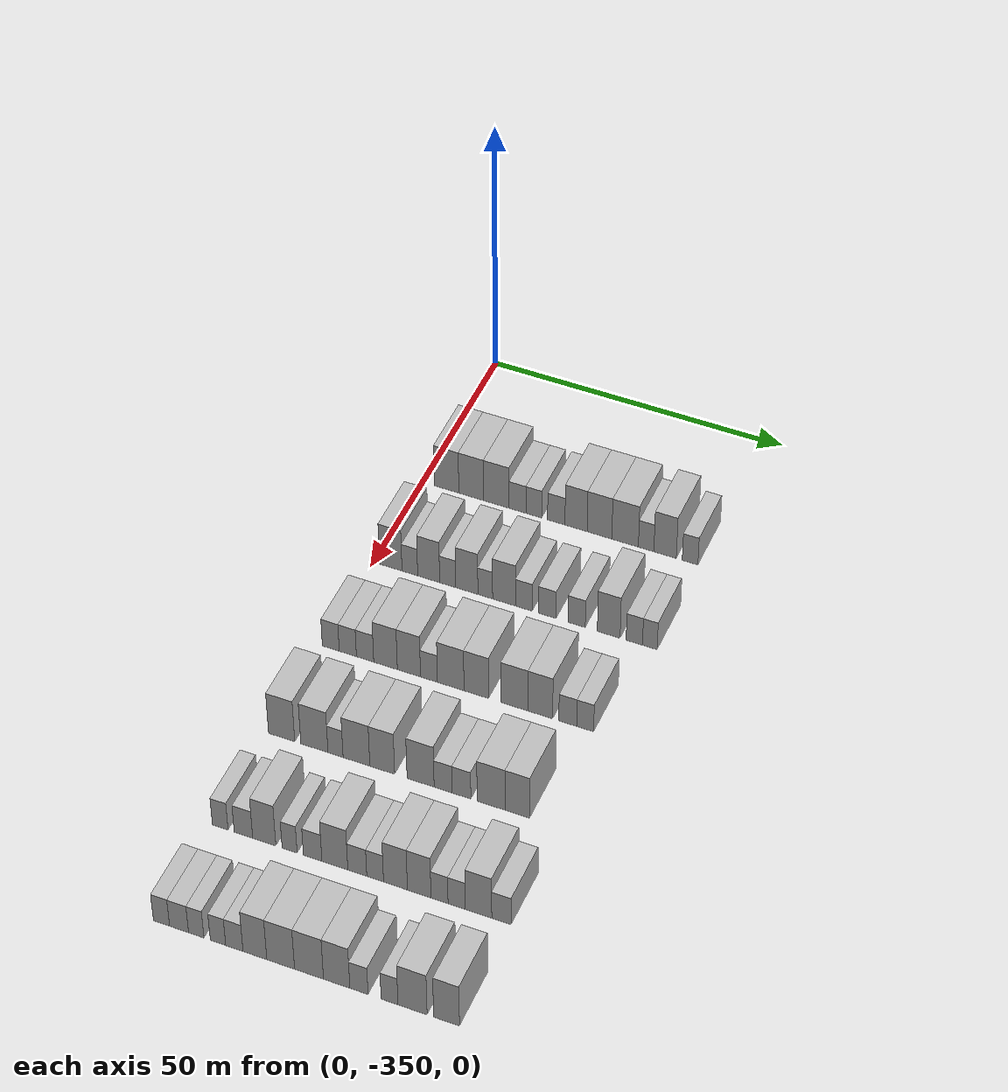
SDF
<sdf version="1.6">
 <world name="default">
  <model name="building_1">
   <static>1</static>
   <pose>25.0000 -345.8766 0 0.000000 0.000000 0.000000</pose>
   <link name="link">
    <pose>0 0 4.50 0 0 0</pose>
    <collision name="collision"><geometry><box><size>10.0000 4.2469 9.0000</size></box></geometry></collision>
    <visual name="visual">
     <cast_shadows>0</cast_shadows>
     <geometry><box><size>10.0000 4.2469 9.0000</size></box></geometry>
     <material>
      <script>
       <uri>model://HANNAS_wall/materials/scripts</uri>
       <uri>model://HANNAS_wall/materials/textures</uri>
       <name>vrc/HANNAS_wall</name>
      </script>
     </material>
    </visual>
   </link>
  </model>
  <model name="building_2">
   <static>1</static>
   <pose>25.0000 -341.6067 0 0.000000 0.000000 0.000000</pose>
   <link name="link">
    <pose>0 0 4.50 0 0 0</pose>
    <collision name="collision"><geometry><box><size>10.0000 4.2928 9.0000</size></box></geometry></collision>
    <visual name="visual">
     <cast_shadows>0</cast_shadows>
     <geometry><box><size>10.0000 4.2928 9.0000</size></box></geometry>
     <material>
      <script>
       <uri>model://HANNAS_wall/materials/scripts</uri>
       <uri>model://HANNAS_wall/materials/textures</uri>
       <name>vrc/HANNAS_wall</name>
      </script>
     </material>
    </visual>
   </link>
  </model>
  <model name="building_3">
   <static>1</static>
   <pose>25.0000 -337.2736 0 0.000000 0.000000 0.000000</pose>
   <link name="link">
    <pose>0 0 4.50 0 0 0</pose>
    <collision name="collision"><geometry><box><size>10.0000 4.3734 9.0000</size></box></geometry></collision>
    <visual name="visual">
     <cast_shadows>0</cast_shadows>
     <geometry><box><size>10.0000 4.3734 9.0000</size></box></geometry>
     <material>
      <script>
       <uri>model://HANNAS_wall/materials/scripts</uri>
       <uri>model://HANNAS_wall/materials/textures</uri>
       <name>vrc/HANNAS_wall</name>
      </script>
     </material>
    </visual>
   </link>
  </model>
  <model name="building_4">
   <static>1</static>
   <pose>25.0000 -333.6477 0 0.000000 0.000000 0.000000</pose>
   <link name="link">
    <pose>0 0 3.00 0 0 0</pose>
    <collision name="collision"><geometry><box><size>10.0000 2.8784 6.0000</size></box></geometry></collision>
    <visual name="visual">
     <cast_shadows>0</cast_shadows>
     <geometry><box><size>10.0000 2.8784 6.0000</size></box></geometry>
     <material>
      <script>
       <uri>model://HANNAS_wall/materials/scripts</uri>
       <uri>model://HANNAS_wall/materials/textures</uri>
       <name>vrc/HANNAS_wall</name>
      </script>
     </material>
    </visual>
   </link>
  </model>
  <model name="building_5">
   <static>1</static>
   <pose>25.0000 -330.8512 0 0.000000 0.000000 0.000000</pose>
   <link name="link">
    <pose>0 0 3.00 0 0 0</pose>
    <collision name="collision"><geometry><box><size>10.0000 2.7145 6.0000</size></box></geometry></collision>
    <visual name="visual">
     <cast_shadows>0</cast_shadows>
     <geometry><box><size>10.0000 2.7145 6.0000</size></box></geometry>
     <material>
      <script>
       <uri>model://HANNAS_wall/materials/scripts</uri>
       <uri>model://HANNAS_wall/materials/textures</uri>
       <name>vrc/HANNAS_wall</name>
      </script>
     </material>
    </visual>
   </link>
  </model>
  <model name="building_6">
   <static>1</static>
   <pose>25.0000 -327.0143 0 0.000000 0.000000 0.000000</pose>
   <link name="link">
    <pose>0 0 3.00 0 0 0</pose>
    <collision name="collision"><geometry><box><size>10.0000 2.9593 6.0000</size></box></geometry></collision>
    <visual name="visual">
     <cast_shadows>0</cast_shadows>
     <geometry><box><size>10.0000 2.9593 6.0000</size></box></geometry>
     <material>
      <script>
       <uri>model://HANNAS_wall/materials/scripts</uri>
       <uri>model://HANNAS_wall/materials/textures</uri>
       <name>vrc/HANNAS_wall</name>
      </script>
     </material>
    </visual>
   </link>
  </model>
  <model name="building_7">
   <static>1</static>
   <pose>25.0000 -323.6500 0 0.000000 0.000000 0.000000</pose>
   <link name="link">
    <pose>0 0 4.50 0 0 0</pose>
    <collision name="collision"><geometry><box><size>10.0000 3.7693 9.0000</size></box></geometry></collision>
    <visual name="visual">
     <cast_shadows>0</cast_shadows>
     <geometry><box><size>10.0000 3.7693 9.0000</size></box></geometry>
     <material>
      <script>
       <uri>model://HANNAS_wall/materials/scripts</uri>
       <uri>model://HANNAS_wall/materials/textures</uri>
       <name>vrc/HANNAS_wall</name>
      </script>
     </material>
    </visual>
   </link>
  </model>
  <model name="building_8">
   <static>1</static>
   <pose>25.0000 -319.6790 0 0.000000 0.000000 0.000000</pose>
   <link name="link">
    <pose>0 0 4.50 0 0 0</pose>
    <collision name="collision"><geometry><box><size>10.0000 4.1728 9.0000</size></box></geometry></collision>
    <visual name="visual">
     <cast_shadows>0</cast_shadows>
     <geometry><box><size>10.0000 4.1728 9.0000</size></box></geometry>
     <material>
      <script>
       <uri>model://HANNAS_wall/materials/scripts</uri>
       <uri>model://HANNAS_wall/materials/textures</uri>
       <name>vrc/HANNAS_wall</name>
      </script>
     </material>
    </visual>
   </link>
  </model>
  <model name="building_9">
   <static>1</static>
   <pose>25.0000 -315.3548 0 0.000000 0.000000 0.000000</pose>
   <link name="link">
    <pose>0 0 4.50 0 0 0</pose>
    <collision name="collision"><geometry><box><size>10.0000 4.4757 9.0000</size></box></geometry></collision>
    <visual name="visual">
     <cast_shadows>0</cast_shadows>
     <geometry><box><size>10.0000 4.4757 9.0000</size></box></geometry>
     <material>
      <script>
       <uri>model://HANNAS_wall/materials/scripts</uri>
       <uri>model://HANNAS_wall/materials/textures</uri>
       <name>vrc/HANNAS_wall</name>
      </script>
     </material>
    </visual>
   </link>
  </model>
  <model name="building_10">
   <static>1</static>
   <pose>25.0000 -311.8194 0 0.000000 0.000000 0.000000</pose>
   <link name="link">
    <pose>0 0 3.00 0 0 0</pose>
    <collision name="collision"><geometry><box><size>10.0000 2.5950 6.0000</size></box></geometry></collision>
    <visual name="visual">
     <cast_shadows>0</cast_shadows>
     <geometry><box><size>10.0000 2.5950 6.0000</size></box></geometry>
     <material>
      <script>
       <uri>model://HANNAS_wall/materials/scripts</uri>
       <uri>model://HANNAS_wall/materials/textures</uri>
       <name>vrc/HANNAS_wall</name>
      </script>
     </material>
    </visual>
   </link>
  </model>
  <model name="building_11">
   <static>1</static>
   <pose>25.0000 -308.6441 0 0.000000 0.000000 0.000000</pose>
   <link name="link">
    <pose>0 0 4.50 0 0 0</pose>
    <collision name="collision"><geometry><box><size>10.0000 3.7557 9.0000</size></box></geometry></collision>
    <visual name="visual">
     <cast_shadows>0</cast_shadows>
     <geometry><box><size>10.0000 3.7557 9.0000</size></box></geometry>
     <material>
      <script>
       <uri>model://HANNAS_wall/materials/scripts</uri>
       <uri>model://HANNAS_wall/materials/textures</uri>
       <name>vrc/HANNAS_wall</name>
      </script>
     </material>
    </visual>
   </link>
  </model>
  <model name="building_12">
   <static>1</static>
   <pose>25.0000 -304.4609 0 0.000000 0.000000 0.000000</pose>
   <link name="link">
    <pose>0 0 3.00 0 0 0</pose>
    <collision name="collision"><geometry><box><size>10.0000 2.6108 6.0000</size></box></geometry></collision>
    <visual name="visual">
     <cast_shadows>0</cast_shadows>
     <geometry><box><size>10.0000 2.6108 6.0000</size></box></geometry>
     <material>
      <script>
       <uri>model://HANNAS_wall/materials/scripts</uri>
       <uri>model://HANNAS_wall/materials/textures</uri>
       <name>vrc/HANNAS_wall</name>
      </script>
     </material>
    </visual>
   </link>
  </model>
  <model name="building_173">
   <static>1</static>
   <pose>44.0000 -347.0838 0 0.000000 0.000000 0.000000</pose>
   <link name="link">
    <pose>0 0 4.50 0 0 0</pose>
    <collision name="collision"><geometry><box><size>10.0000 3.8324 9.0000</size></box></geometry></collision>
    <visual name="visual">
     <cast_shadows>0</cast_shadows>
     <geometry><box><size>10.0000 3.8324 9.0000</size></box></geometry>
     <material>
      <script>
       <uri>model://HANNAS_wall/materials/scripts</uri>
       <uri>model://HANNAS_wall/materials/textures</uri>
       <name>vrc/HANNAS_wall</name>
      </script>
     </material>
    </visual>
   </link>
  </model>
  <model name="building_174">
   <static>1</static>
   <pose>44.0000 -343.8334 0 0.000000 0.000000 0.000000</pose>
   <link name="link">
    <pose>0 0 3.00 0 0 0</pose>
    <collision name="collision"><geometry><box><size>10.0000 2.6684 6.0000</size></box></geometry></collision>
    <visual name="visual">
     <cast_shadows>0</cast_shadows>
     <geometry><box><size>10.0000 2.6684 6.0000</size></box></geometry>
     <material>
      <script>
       <uri>model://HANNAS_wall/materials/scripts</uri>
       <uri>model://HANNAS_wall/materials/textures</uri>
       <name>vrc/HANNAS_wall</name>
      </script>
     </material>
    </visual>
   </link>
  </model>
  <model name="building_175">
   <static>1</static>
   <pose>44.0000 -340.6314 0 0.000000 0.000000 0.000000</pose>
   <link name="link">
    <pose>0 0 4.50 0 0 0</pose>
    <collision name="collision"><geometry><box><size>10.0000 3.7356 9.0000</size></box></geometry></collision>
    <visual name="visual">
     <cast_shadows>0</cast_shadows>
     <geometry><box><size>10.0000 3.7356 9.0000</size></box></geometry>
     <material>
      <script>
       <uri>model://HANNAS_wall/materials/scripts</uri>
       <uri>model://HANNAS_wall/materials/textures</uri>
       <name>vrc/HANNAS_wall</name>
      </script>
     </material>
    </visual>
   </link>
  </model>
  <model name="building_176">
   <static>1</static>
   <pose>44.0000 -337.4094 0 0.000000 0.000000 0.000000</pose>
   <link name="link">
    <pose>0 0 3.00 0 0 0</pose>
    <collision name="collision"><geometry><box><size>10.0000 2.7083 6.0000</size></box></geometry></collision>
    <visual name="visual">
     <cast_shadows>0</cast_shadows>
     <geometry><box><size>10.0000 2.7083 6.0000</size></box></geometry>
     <material>
      <script>
       <uri>model://HANNAS_wall/materials/scripts</uri>
       <uri>model://HANNAS_wall/materials/textures</uri>
       <name>vrc/HANNAS_wall</name>
      </script>
     </material>
    </visual>
   </link>
  </model>
  <model name="building_177">
   <static>1</static>
   <pose>44.0000 -334.1881 0 0.000000 0.000000 0.000000</pose>
   <link name="link">
    <pose>0 0 4.50 0 0 0</pose>
    <collision name="collision"><geometry><box><size>10.0000 3.7343 9.0000</size></box></geometry></collision>
    <visual name="visual">
     <cast_shadows>0</cast_shadows>
     <geometry><box><size>10.0000 3.7343 9.0000</size></box></geometry>
     <material>
      <script>
       <uri>model://HANNAS_wall/materials/scripts</uri>
       <uri>model://HANNAS_wall/materials/textures</uri>
       <name>vrc/HANNAS_wall</name>
      </script>
     </material>
    </visual>
   </link>
  </model>
  <model name="building_178">
   <static>1</static>
   <pose>44.0000 -331.0827 0 0.000000 0.000000 0.000000</pose>
   <link name="link">
    <pose>0 0 3.00 0 0 0</pose>
    <collision name="collision"><geometry><box><size>10.0000 2.4766 6.0000</size></box></geometry></collision>
    <visual name="visual">
     <cast_shadows>0</cast_shadows>
     <geometry><box><size>10.0000 2.4766 6.0000</size></box></geometry>
     <material>
      <script>
       <uri>model://HANNAS_wall/materials/scripts</uri>
       <uri>model://HANNAS_wall/materials/textures</uri>
       <name>vrc/HANNAS_wall</name>
      </script>
     </material>
    </visual>
   </link>
  </model>
  <model name="building_179">
   <static>1</static>
   <pose>44.0000 -327.9349 0 0.000000 0.000000 0.000000</pose>
   <link name="link">
    <pose>0 0 4.50 0 0 0</pose>
    <collision name="collision"><geometry><box><size>10.0000 3.8190 9.0000</size></box></geometry></collision>
    <visual name="visual">
     <cast_shadows>0</cast_shadows>
     <geometry><box><size>10.0000 3.8190 9.0000</size></box></geometry>
     <material>
      <script>
       <uri>model://HANNAS_wall/materials/scripts</uri>
       <uri>model://HANNAS_wall/materials/textures</uri>
       <name>vrc/HANNAS_wall</name>
      </script>
     </material>
    </visual>
   </link>
  </model>
  <model name="building_180">
   <static>1</static>
   <pose>44.0000 -324.6246 0 0.000000 0.000000 0.000000</pose>
   <link name="link">
    <pose>0 0 3.00 0 0 0</pose>
    <collision name="collision"><geometry><box><size>10.0000 2.8017 6.0000</size></box></geometry></collision>
    <visual name="visual">
     <cast_shadows>0</cast_shadows>
     <geometry><box><size>10.0000 2.8017 6.0000</size></box></geometry>
     <material>
      <script>
       <uri>model://HANNAS_wall/materials/scripts</uri>
       <uri>model://HANNAS_wall/materials/textures</uri>
       <name>vrc/HANNAS_wall</name>
      </script>
     </material>
    </visual>
   </link>
  </model>
  <model name="building_181">
   <static>1</static>
   <pose>44.0000 -320.7338 0 0.000000 0.000000 0.000000</pose>
   <link name="link">
    <pose>0 0 3.00 0 0 0</pose>
    <collision name="collision"><geometry><box><size>10.0000 2.9799 6.0000</size></box></geometry></collision>
    <visual name="visual">
     <cast_shadows>0</cast_shadows>
     <geometry><box><size>10.0000 2.9799 6.0000</size></box></geometry>
     <material>
      <script>
       <uri>model://HANNAS_wall/materials/scripts</uri>
       <uri>model://HANNAS_wall/materials/textures</uri>
       <name>vrc/HANNAS_wall</name>
      </script>
     </material>
    </visual>
   </link>
  </model>
  <model name="building_182">
   <static>1</static>
   <pose>44.0000 -315.8324 0 0.000000 0.000000 0.000000</pose>
   <link name="link">
    <pose>0 0 3.00 0 0 0</pose>
    <collision name="collision"><geometry><box><size>10.0000 2.8229 6.0000</size></box></geometry></collision>
    <visual name="visual">
     <cast_shadows>0</cast_shadows>
     <geometry><box><size>10.0000 2.8229 6.0000</size></box></geometry>
     <material>
      <script>
       <uri>model://HANNAS_wall/materials/scripts</uri>
       <uri>model://HANNAS_wall/materials/textures</uri>
       <name>vrc/HANNAS_wall</name>
      </script>
     </material>
    </visual>
   </link>
  </model>
  <model name="building_183">
   <static>1</static>
   <pose>44.0000 -310.5502 0 0.000000 0.000000 0.000000</pose>
   <link name="link">
    <pose>0 0 4.50 0 0 0</pose>
    <collision name="collision"><geometry><box><size>10.0000 3.7415 9.0000</size></box></geometry></collision>
    <visual name="visual">
     <cast_shadows>0</cast_shadows>
     <geometry><box><size>10.0000 3.7415 9.0000</size></box></geometry>
     <material>
      <script>
       <uri>model://HANNAS_wall/materials/scripts</uri>
       <uri>model://HANNAS_wall/materials/textures</uri>
       <name>vrc/HANNAS_wall</name>
      </script>
     </material>
    </visual>
   </link>
  </model>
  <model name="building_184">
   <static>1</static>
   <pose>44.0000 -306.3416 0 0.000000 0.000000 0.000000</pose>
   <link name="link">
    <pose>0 0 3.00 0 0 0</pose>
    <collision name="collision"><geometry><box><size>10.0000 2.6758 6.0000</size></box></geometry></collision>
    <visual name="visual">
     <cast_shadows>0</cast_shadows>
     <geometry><box><size>10.0000 2.6758 6.0000</size></box></geometry>
     <material>
      <script>
       <uri>model://HANNAS_wall/materials/scripts</uri>
       <uri>model://HANNAS_wall/materials/textures</uri>
       <name>vrc/HANNAS_wall</name>
      </script>
     </material>
    </visual>
   </link>
  </model>
  <model name="building_185">
   <static>1</static>
   <pose>44.0000 -303.8030 0 0.000000 0.000000 0.000000</pose>
   <link name="link">
    <pose>0 0 3.00 0 0 0</pose>
    <collision name="collision"><geometry><box><size>10.0000 2.4013 6.0000</size></box></geometry></collision>
    <visual name="visual">
     <cast_shadows>0</cast_shadows>
     <geometry><box><size>10.0000 2.4013 6.0000</size></box></geometry>
     <material>
      <script>
       <uri>model://HANNAS_wall/materials/scripts</uri>
       <uri>model://HANNAS_wall/materials/textures</uri>
       <name>vrc/HANNAS_wall</name>
      </script>
     </material>
    </visual>
   </link>
  </model>
  <model name="building_346">
   <static>1</static>
   <pose>63.0000 -348.5832 0 0.000000 0.000000 0.000000</pose>
   <link name="link">
    <pose>0 0 3.00 0 0 0</pose>
    <collision name="collision"><geometry><box><size>10.0000 2.8336 6.0000</size></box></geometry></collision>
    <visual name="visual">
     <cast_shadows>0</cast_shadows>
     <geometry><box><size>10.0000 2.8336 6.0000</size></box></geometry>
     <material>
      <script>
       <uri>model://HANNAS_wall/materials/scripts</uri>
       <uri>model://HANNAS_wall/materials/textures</uri>
       <name>vrc/HANNAS_wall</name>
      </script>
     </material>
    </visual>
   </link>
  </model>
  <model name="building_347">
   <static>1</static>
   <pose>63.0000 -345.7276 0 0.000000 0.000000 0.000000</pose>
   <link name="link">
    <pose>0 0 3.00 0 0 0</pose>
    <collision name="collision"><geometry><box><size>10.0000 2.8775 6.0000</size></box></geometry></collision>
    <visual name="visual">
     <cast_shadows>0</cast_shadows>
     <geometry><box><size>10.0000 2.8775 6.0000</size></box></geometry>
     <material>
      <script>
       <uri>model://HANNAS_wall/materials/scripts</uri>
       <uri>model://HANNAS_wall/materials/textures</uri>
       <name>vrc/HANNAS_wall</name>
      </script>
     </material>
    </visual>
   </link>
  </model>
  <model name="building_348">
   <static>1</static>
   <pose>63.0000 -342.8419 0 0.000000 0.000000 0.000000</pose>
   <link name="link">
    <pose>0 0 3.00 0 0 0</pose>
    <collision name="collision"><geometry><box><size>10.0000 2.8939 6.0000</size></box></geometry></collision>
    <visual name="visual">
     <cast_shadows>0</cast_shadows>
     <geometry><box><size>10.0000 2.8939 6.0000</size></box></geometry>
     <material>
      <script>
       <uri>model://HANNAS_wall/materials/scripts</uri>
       <uri>model://HANNAS_wall/materials/textures</uri>
       <name>vrc/HANNAS_wall</name>
      </script>
     </material>
    </visual>
   </link>
  </model>
  <model name="building_349">
   <static>1</static>
   <pose>63.0000 -339.4295 0 0.000000 0.000000 0.000000</pose>
   <link name="link">
    <pose>0 0 4.50 0 0 0</pose>
    <collision name="collision"><geometry><box><size>10.0000 3.9308 9.0000</size></box></geometry></collision>
    <visual name="visual">
     <cast_shadows>0</cast_shadows>
     <geometry><box><size>10.0000 3.9308 9.0000</size></box></geometry>
     <material>
      <script>
       <uri>model://HANNAS_wall/materials/scripts</uri>
       <uri>model://HANNAS_wall/materials/textures</uri>
       <name>vrc/HANNAS_wall</name>
      </script>
     </material>
    </visual>
   </link>
  </model>
  <model name="building_350">
   <static>1</static>
   <pose>63.0000 -335.5470 0 0.000000 0.000000 0.000000</pose>
   <link name="link">
    <pose>0 0 4.50 0 0 0</pose>
    <collision name="collision"><geometry><box><size>10.0000 3.8343 9.0000</size></box></geometry></collision>
    <visual name="visual">
     <cast_shadows>0</cast_shadows>
     <geometry><box><size>10.0000 3.8343 9.0000</size></box></geometry>
     <material>
      <script>
       <uri>model://HANNAS_wall/materials/scripts</uri>
       <uri>model://HANNAS_wall/materials/textures</uri>
       <name>vrc/HANNAS_wall</name>
      </script>
     </material>
    </visual>
   </link>
  </model>
  <model name="building_351">
   <static>1</static>
   <pose>63.0000 -332.2311 0 0.000000 0.000000 0.000000</pose>
   <link name="link">
    <pose>0 0 3.00 0 0 0</pose>
    <collision name="collision"><geometry><box><size>10.0000 2.7973 6.0000</size></box></geometry></collision>
    <visual name="visual">
     <cast_shadows>0</cast_shadows>
     <geometry><box><size>10.0000 2.7973 6.0000</size></box></geometry>
     <material>
      <script>
       <uri>model://HANNAS_wall/materials/scripts</uri>
       <uri>model://HANNAS_wall/materials/textures</uri>
       <name>vrc/HANNAS_wall</name>
      </script>
     </material>
    </visual>
   </link>
  </model>
  <model name="building_352">
   <static>1</static>
   <pose>63.0000 -328.6461 0 0.000000 0.000000 0.000000</pose>
   <link name="link">
    <pose>0 0 4.50 0 0 0</pose>
    <collision name="collision"><geometry><box><size>10.0000 4.3728 9.0000</size></box></geometry></collision>
    <visual name="visual">
     <cast_shadows>0</cast_shadows>
     <geometry><box><size>10.0000 4.3728 9.0000</size></box></geometry>
     <material>
      <script>
       <uri>model://HANNAS_wall/materials/scripts</uri>
       <uri>model://HANNAS_wall/materials/textures</uri>
       <name>vrc/HANNAS_wall</name>
      </script>
     </material>
    </visual>
   </link>
  </model>
  <model name="building_353">
   <static>1</static>
   <pose>63.0000 -324.4435 0 0.000000 0.000000 0.000000</pose>
   <link name="link">
    <pose>0 0 4.50 0 0 0</pose>
    <collision name="collision"><geometry><box><size>10.0000 4.0324 9.0000</size></box></geometry></collision>
    <visual name="visual">
     <cast_shadows>0</cast_shadows>
     <geometry><box><size>10.0000 4.0324 9.0000</size></box></geometry>
     <material>
      <script>
       <uri>model://HANNAS_wall/materials/scripts</uri>
       <uri>model://HANNAS_wall/materials/textures</uri>
       <name>vrc/HANNAS_wall</name>
      </script>
     </material>
    </visual>
   </link>
  </model>
  <model name="building_354">
   <static>1</static>
   <pose>63.0000 -318.2285 0 0.000000 0.000000 0.000000</pose>
   <link name="link">
    <pose>0 0 4.50 0 0 0</pose>
    <collision name="collision"><geometry><box><size>10.0000 4.3975 9.0000</size></box></geometry></collision>
    <visual name="visual">
     <cast_shadows>0</cast_shadows>
     <geometry><box><size>10.0000 4.3975 9.0000</size></box></geometry>
     <material>
      <script>
       <uri>model://HANNAS_wall/materials/scripts</uri>
       <uri>model://HANNAS_wall/materials/textures</uri>
       <name>vrc/HANNAS_wall</name>
      </script>
     </material>
    </visual>
   </link>
  </model>
  <model name="building_355">
   <static>1</static>
   <pose>63.0000 -314.0190 0 0.000000 0.000000 0.000000</pose>
   <link name="link">
    <pose>0 0 4.50 0 0 0</pose>
    <collision name="collision"><geometry><box><size>10.0000 4.0216 9.0000</size></box></geometry></collision>
    <visual name="visual">
     <cast_shadows>0</cast_shadows>
     <geometry><box><size>10.0000 4.0216 9.0000</size></box></geometry>
     <material>
      <script>
       <uri>model://HANNAS_wall/materials/scripts</uri>
       <uri>model://HANNAS_wall/materials/textures</uri>
       <name>vrc/HANNAS_wall</name>
      </script>
     </material>
    </visual>
   </link>
  </model>
  <model name="building_356">
   <static>1</static>
   <pose>63.0000 -309.5709 0 0.000000 0.000000 0.000000</pose>
   <link name="link">
    <pose>0 0 3.00 0 0 0</pose>
    <collision name="collision"><geometry><box><size>10.0000 2.8746 6.0000</size></box></geometry></collision>
    <visual name="visual">
     <cast_shadows>0</cast_shadows>
     <geometry><box><size>10.0000 2.8746 6.0000</size></box></geometry>
     <material>
      <script>
       <uri>model://HANNAS_wall/materials/scripts</uri>
       <uri>model://HANNAS_wall/materials/textures</uri>
       <name>vrc/HANNAS_wall</name>
      </script>
     </material>
    </visual>
   </link>
  </model>
  <model name="building_357">
   <static>1</static>
   <pose>63.0000 -306.7648 0 0.000000 0.000000 0.000000</pose>
   <link name="link">
    <pose>0 0 3.00 0 0 0</pose>
    <collision name="collision"><geometry><box><size>10.0000 2.7375 6.0000</size></box></geometry></collision>
    <visual name="visual">
     <cast_shadows>0</cast_shadows>
     <geometry><box><size>10.0000 2.7375 6.0000</size></box></geometry>
     <material>
      <script>
       <uri>model://HANNAS_wall/materials/scripts</uri>
       <uri>model://HANNAS_wall/materials/textures</uri>
       <name>vrc/HANNAS_wall</name>
      </script>
     </material>
    </visual>
   </link>
  </model>
  <model name="building_517">
   <static>1</static>
   <pose>82.0000 -347.8488 0 0.000000 0.000000 0.000000</pose>
   <link name="link">
    <pose>0 0 4.50 0 0 0</pose>
    <collision name="collision"><geometry><box><size>10.0000 4.3024 9.0000</size></box></geometry></collision>
    <visual name="visual">
     <cast_shadows>0</cast_shadows>
     <geometry><box><size>10.0000 4.3024 9.0000</size></box></geometry>
     <material>
      <script>
       <uri>model://HANNAS_wall/materials/scripts</uri>
       <uri>model://HANNAS_wall/materials/textures</uri>
       <name>vrc/HANNAS_wall</name>
      </script>
     </material>
    </visual>
   </link>
  </model>
  <model name="building_518">
   <static>1</static>
   <pose>82.0000 -342.4731 0 0.000000 0.000000 0.000000</pose>
   <link name="link">
    <pose>0 0 4.50 0 0 0</pose>
    <collision name="collision"><geometry><box><size>10.0000 4.4490 9.0000</size></box></geometry></collision>
    <visual name="visual">
     <cast_shadows>0</cast_shadows>
     <geometry><box><size>10.0000 4.4490 9.0000</size></box></geometry>
     <material>
      <script>
       <uri>model://HANNAS_wall/materials/scripts</uri>
       <uri>model://HANNAS_wall/materials/textures</uri>
       <name>vrc/HANNAS_wall</name>
      </script>
     </material>
    </visual>
   </link>
  </model>
  <model name="building_519">
   <static>1</static>
   <pose>82.0000 -339.0184 0 0.000000 0.000000 0.000000</pose>
   <link name="link">
    <pose>0 0 3.00 0 0 0</pose>
    <collision name="collision"><geometry><box><size>10.0000 2.4603 6.0000</size></box></geometry></collision>
    <visual name="visual">
     <cast_shadows>0</cast_shadows>
     <geometry><box><size>10.0000 2.4603 6.0000</size></box></geometry>
     <material>
      <script>
       <uri>model://HANNAS_wall/materials/scripts</uri>
       <uri>model://HANNAS_wall/materials/textures</uri>
       <name>vrc/HANNAS_wall</name>
      </script>
     </material>
    </visual>
   </link>
  </model>
  <model name="building_520">
   <static>1</static>
   <pose>82.0000 -335.6096 0 0.000000 0.000000 0.000000</pose>
   <link name="link">
    <pose>0 0 4.50 0 0 0</pose>
    <collision name="collision"><geometry><box><size>10.0000 4.3574 9.0000</size></box></geometry></collision>
    <visual name="visual">
     <cast_shadows>0</cast_shadows>
     <geometry><box><size>10.0000 4.3574 9.0000</size></box></geometry>
     <material>
      <script>
       <uri>model://HANNAS_wall/materials/scripts</uri>
       <uri>model://HANNAS_wall/materials/textures</uri>
       <name>vrc/HANNAS_wall</name>
      </script>
     </material>
    </visual>
   </link>
  </model>
  <model name="building_521">
   <static>1</static>
   <pose>82.0000 -331.4197 0 0.000000 0.000000 0.000000</pose>
   <link name="link">
    <pose>0 0 4.50 0 0 0</pose>
    <collision name="collision"><geometry><box><size>10.0000 4.0223 9.0000</size></box></geometry></collision>
    <visual name="visual">
     <cast_shadows>0</cast_shadows>
     <geometry><box><size>10.0000 4.0223 9.0000</size></box></geometry>
     <material>
      <script>
       <uri>model://HANNAS_wall/materials/scripts</uri>
       <uri>model://HANNAS_wall/materials/textures</uri>
       <name>vrc/HANNAS_wall</name>
      </script>
     </material>
    </visual>
   </link>
  </model>
  <model name="building_522">
   <static>1</static>
   <pose>82.0000 -325.2316 0 0.000000 0.000000 0.000000</pose>
   <link name="link">
    <pose>0 0 4.50 0 0 0</pose>
    <collision name="collision"><geometry><box><size>10.0000 4.3540 9.0000</size></box></geometry></collision>
    <visual name="visual">
     <cast_shadows>0</cast_shadows>
     <geometry><box><size>10.0000 4.3540 9.0000</size></box></geometry>
     <material>
      <script>
       <uri>model://HANNAS_wall/materials/scripts</uri>
       <uri>model://HANNAS_wall/materials/textures</uri>
       <name>vrc/HANNAS_wall</name>
      </script>
     </material>
    </visual>
   </link>
  </model>
  <model name="building_523">
   <static>1</static>
   <pose>82.0000 -321.6111 0 0.000000 0.000000 0.000000</pose>
   <link name="link">
    <pose>0 0 3.00 0 0 0</pose>
    <collision name="collision"><geometry><box><size>10.0000 2.8870 6.0000</size></box></geometry></collision>
    <visual name="visual">
     <cast_shadows>0</cast_shadows>
     <geometry><box><size>10.0000 2.8870 6.0000</size></box></geometry>
     <material>
      <script>
       <uri>model://HANNAS_wall/materials/scripts</uri>
       <uri>model://HANNAS_wall/materials/textures</uri>
       <name>vrc/HANNAS_wall</name>
      </script>
     </material>
    </visual>
   </link>
  </model>
  <model name="building_524">
   <static>1</static>
   <pose>82.0000 -318.6699 0 0.000000 0.000000 0.000000</pose>
   <link name="link">
    <pose>0 0 3.00 0 0 0</pose>
    <collision name="collision"><geometry><box><size>10.0000 2.9954 6.0000</size></box></geometry></collision>
    <visual name="visual">
     <cast_shadows>0</cast_shadows>
     <geometry><box><size>10.0000 2.9954 6.0000</size></box></geometry>
     <material>
      <script>
       <uri>model://HANNAS_wall/materials/scripts</uri>
       <uri>model://HANNAS_wall/materials/textures</uri>
       <name>vrc/HANNAS_wall</name>
      </script>
     </material>
    </visual>
   </link>
  </model>
  <model name="building_525">
   <static>1</static>
   <pose>82.0000 -313.9546 0 0.000000 0.000000 0.000000</pose>
   <link name="link">
    <pose>0 0 4.50 0 0 0</pose>
    <collision name="collision"><geometry><box><size>10.0000 4.4352 9.0000</size></box></geometry></collision>
    <visual name="visual">
     <cast_shadows>0</cast_shadows>
     <geometry><box><size>10.0000 4.4352 9.0000</size></box></geometry>
     <material>
      <script>
       <uri>model://HANNAS_wall/materials/scripts</uri>
       <uri>model://HANNAS_wall/materials/textures</uri>
       <name>vrc/HANNAS_wall</name>
      </script>
     </material>
    </visual>
   </link>
  </model>
  <model name="building_526">
   <static>1</static>
   <pose>82.0000 -309.7872 0 0.000000 0.000000 0.000000</pose>
   <link name="link">
    <pose>0 0 4.50 0 0 0</pose>
    <collision name="collision"><geometry><box><size>10.0000 3.8997 9.0000</size></box></geometry></collision>
    <visual name="visual">
     <cast_shadows>0</cast_shadows>
     <geometry><box><size>10.0000 3.8997 9.0000</size></box></geometry>
     <material>
      <script>
       <uri>model://HANNAS_wall/materials/scripts</uri>
       <uri>model://HANNAS_wall/materials/textures</uri>
       <name>vrc/HANNAS_wall</name>
      </script>
     </material>
    </visual>
   </link>
  </model>
  <model name="building_691">
   <static>1</static>
   <pose>101.0000 -348.7328 0 0.000000 0.000000 0.000000</pose>
   <link name="link">
    <pose>0 0 3.00 0 0 0</pose>
    <collision name="collision"><geometry><box><size>10.0000 2.5344 6.0000</size></box></geometry></collision>
    <visual name="visual">
     <cast_shadows>0</cast_shadows>
     <geometry><box><size>10.0000 2.5344 6.0000</size></box></geometry>
     <material>
      <script>
       <uri>model://HANNAS_wall/materials/scripts</uri>
       <uri>model://HANNAS_wall/materials/textures</uri>
       <name>vrc/HANNAS_wall</name>
      </script>
     </material>
    </visual>
   </link>
  </model>
  <model name="building_692">
   <static>1</static>
   <pose>101.0000 -344.9780 0 0.000000 0.000000 0.000000</pose>
   <link name="link">
    <pose>0 0 3.00 0 0 0</pose>
    <collision name="collision"><geometry><box><size>10.0000 2.9753 6.0000</size></box></geometry></collision>
    <visual name="visual">
     <cast_shadows>0</cast_shadows>
     <geometry><box><size>10.0000 2.9753 6.0000</size></box></geometry>
     <material>
      <script>
       <uri>model://HANNAS_wall/materials/scripts</uri>
       <uri>model://HANNAS_wall/materials/textures</uri>
       <name>vrc/HANNAS_wall</name>
      </script>
     </material>
    </visual>
   </link>
  </model>
  <model name="building_693">
   <static>1</static>
   <pose>101.0000 -341.6288 0 0.000000 0.000000 0.000000</pose>
   <link name="link">
    <pose>0 0 4.50 0 0 0</pose>
    <collision name="collision"><geometry><box><size>10.0000 3.7229 9.0000</size></box></geometry></collision>
    <visual name="visual">
     <cast_shadows>0</cast_shadows>
     <geometry><box><size>10.0000 3.7229 9.0000</size></box></geometry>
     <material>
      <script>
       <uri>model://HANNAS_wall/materials/scripts</uri>
       <uri>model://HANNAS_wall/materials/textures</uri>
       <name>vrc/HANNAS_wall</name>
      </script>
     </material>
    </visual>
   </link>
  </model>
  <model name="building_694">
   <static>1</static>
   <pose>101.0000 -337.5661 0 0.000000 0.000000 0.000000</pose>
   <link name="link">
    <pose>0 0 3.00 0 0 0</pose>
    <collision name="collision"><geometry><box><size>10.0000 2.4026 6.0000</size></box></geometry></collision>
    <visual name="visual">
     <cast_shadows>0</cast_shadows>
     <geometry><box><size>10.0000 2.4026 6.0000</size></box></geometry>
     <material>
      <script>
       <uri>model://HANNAS_wall/materials/scripts</uri>
       <uri>model://HANNAS_wall/materials/textures</uri>
       <name>vrc/HANNAS_wall</name>
      </script>
     </material>
    </visual>
   </link>
  </model>
  <model name="building_695">
   <static>1</static>
   <pose>101.0000 -333.8900 0 0.000000 0.000000 0.000000</pose>
   <link name="link">
    <pose>0 0 3.00 0 0 0</pose>
    <collision name="collision"><geometry><box><size>10.0000 2.9494 6.0000</size></box></geometry></collision>
    <visual name="visual">
     <cast_shadows>0</cast_shadows>
     <geometry><box><size>10.0000 2.9494 6.0000</size></box></geometry>
     <material>
      <script>
       <uri>model://HANNAS_wall/materials/scripts</uri>
       <uri>model://HANNAS_wall/materials/textures</uri>
       <name>vrc/HANNAS_wall</name>
      </script>
     </material>
    </visual>
   </link>
  </model>
  <model name="building_696">
   <static>1</static>
   <pose>101.0000 -330.3601 0 0.000000 0.000000 0.000000</pose>
   <link name="link">
    <pose>0 0 4.50 0 0 0</pose>
    <collision name="collision"><geometry><box><size>10.0000 4.1105 9.0000</size></box></geometry></collision>
    <visual name="visual">
     <cast_shadows>0</cast_shadows>
     <geometry><box><size>10.0000 4.1105 9.0000</size></box></geometry>
     <material>
      <script>
       <uri>model://HANNAS_wall/materials/scripts</uri>
       <uri>model://HANNAS_wall/materials/textures</uri>
       <name>vrc/HANNAS_wall</name>
      </script>
     </material>
    </visual>
   </link>
  </model>
  <model name="building_697">
   <static>1</static>
   <pose>101.0000 -326.8053 0 0.000000 0.000000 0.000000</pose>
   <link name="link">
    <pose>0 0 3.00 0 0 0</pose>
    <collision name="collision"><geometry><box><size>10.0000 2.9990 6.0000</size></box></geometry></collision>
    <visual name="visual">
     <cast_shadows>0</cast_shadows>
     <geometry><box><size>10.0000 2.9990 6.0000</size></box></geometry>
     <material>
      <script>
       <uri>model://HANNAS_wall/materials/scripts</uri>
       <uri>model://HANNAS_wall/materials/textures</uri>
       <name>vrc/HANNAS_wall</name>
      </script>
     </material>
    </visual>
   </link>
  </model>
  <model name="building_698">
   <static>1</static>
   <pose>101.0000 -323.9829 0 0.000000 0.000000 0.000000</pose>
   <link name="link">
    <pose>0 0 3.00 0 0 0</pose>
    <collision name="collision"><geometry><box><size>10.0000 2.6459 6.0000</size></box></geometry></collision>
    <visual name="visual">
     <cast_shadows>0</cast_shadows>
     <geometry><box><size>10.0000 2.6459 6.0000</size></box></geometry>
     <material>
      <script>
       <uri>model://HANNAS_wall/materials/scripts</uri>
       <uri>model://HANNAS_wall/materials/textures</uri>
       <name>vrc/HANNAS_wall</name>
      </script>
     </material>
    </visual>
   </link>
  </model>
  <model name="building_699">
   <static>1</static>
   <pose>101.0000 -320.7829 0 0.000000 0.000000 0.000000</pose>
   <link name="link">
    <pose>0 0 4.50 0 0 0</pose>
    <collision name="collision"><geometry><box><size>10.0000 3.7542 9.0000</size></box></geometry></collision>
    <visual name="visual">
     <cast_shadows>0</cast_shadows>
     <geometry><box><size>10.0000 3.7542 9.0000</size></box></geometry>
     <material>
      <script>
       <uri>model://HANNAS_wall/materials/scripts</uri>
       <uri>model://HANNAS_wall/materials/textures</uri>
       <name>vrc/HANNAS_wall</name>
      </script>
     </material>
    </visual>
   </link>
  </model>
  <model name="building_700">
   <static>1</static>
   <pose>101.0000 -317.0605 0 0.000000 0.000000 0.000000</pose>
   <link name="link">
    <pose>0 0 4.50 0 0 0</pose>
    <collision name="collision"><geometry><box><size>10.0000 3.6905 9.0000</size></box></geometry></collision>
    <visual name="visual">
     <cast_shadows>0</cast_shadows>
     <geometry><box><size>10.0000 3.6905 9.0000</size></box></geometry>
     <material>
      <script>
       <uri>model://HANNAS_wall/materials/scripts</uri>
       <uri>model://HANNAS_wall/materials/textures</uri>
       <name>vrc/HANNAS_wall</name>
      </script>
     </material>
    </visual>
   </link>
  </model>
  <model name="building_701">
   <static>1</static>
   <pose>101.0000 -313.8864 0 0.000000 0.000000 0.000000</pose>
   <link name="link">
    <pose>0 0 3.00 0 0 0</pose>
    <collision name="collision"><geometry><box><size>10.0000 2.6578 6.0000</size></box></geometry></collision>
    <visual name="visual">
     <cast_shadows>0</cast_shadows>
     <geometry><box><size>10.0000 2.6578 6.0000</size></box></geometry>
     <material>
      <script>
       <uri>model://HANNAS_wall/materials/scripts</uri>
       <uri>model://HANNAS_wall/materials/textures</uri>
       <name>vrc/HANNAS_wall</name>
      </script>
     </material>
    </visual>
   </link>
  </model>
  <model name="building_702">
   <static>1</static>
   <pose>101.0000 -311.2056 0 0.000000 0.000000 0.000000</pose>
   <link name="link">
    <pose>0 0 3.00 0 0 0</pose>
    <collision name="collision"><geometry><box><size>10.0000 2.7037 6.0000</size></box></geometry></collision>
    <visual name="visual">
     <cast_shadows>0</cast_shadows>
     <geometry><box><size>10.0000 2.7037 6.0000</size></box></geometry>
     <material>
      <script>
       <uri>model://HANNAS_wall/materials/scripts</uri>
       <uri>model://HANNAS_wall/materials/textures</uri>
       <name>vrc/HANNAS_wall</name>
      </script>
     </material>
    </visual>
   </link>
  </model>
  <model name="building_703">
   <static>1</static>
   <pose>101.0000 -307.8127 0 0.000000 0.000000 0.000000</pose>
   <link name="link">
    <pose>0 0 4.50 0 0 0</pose>
    <collision name="collision"><geometry><box><size>10.0000 4.0820 9.0000</size></box></geometry></collision>
    <visual name="visual">
     <cast_shadows>0</cast_shadows>
     <geometry><box><size>10.0000 4.0820 9.0000</size></box></geometry>
     <material>
      <script>
       <uri>model://HANNAS_wall/materials/scripts</uri>
       <uri>model://HANNAS_wall/materials/textures</uri>
       <name>vrc/HANNAS_wall</name>
      </script>
     </material>
    </visual>
   </link>
  </model>
  <model name="building_704">
   <static>1</static>
   <pose>101.0000 -304.2725 0 0.000000 0.000000 0.000000</pose>
   <link name="link">
    <pose>0 0 3.00 0 0 0</pose>
    <collision name="collision"><geometry><box><size>10.0000 2.9984 6.0000</size></box></geometry></collision>
    <visual name="visual">
     <cast_shadows>0</cast_shadows>
     <geometry><box><size>10.0000 2.9984 6.0000</size></box></geometry>
     <material>
      <script>
       <uri>model://HANNAS_wall/materials/scripts</uri>
       <uri>model://HANNAS_wall/materials/textures</uri>
       <name>vrc/HANNAS_wall</name>
      </script>
     </material>
    </visual>
   </link>
  </model>
  <model name="building_862">
   <static>1</static>
   <pose>120.0000 -348.7202 0 0.000000 0.000000 0.000000</pose>
   <link name="link">
    <pose>0 0 3.00 0 0 0</pose>
    <collision name="collision"><geometry><box><size>10.0000 2.5596 6.0000</size></box></geometry></collision>
    <visual name="visual">
     <cast_shadows>0</cast_shadows>
     <geometry><box><size>10.0000 2.5596 6.0000</size></box></geometry>
     <material>
      <script>
       <uri>model://HANNAS_wall/materials/scripts</uri>
       <uri>model://HANNAS_wall/materials/textures</uri>
       <name>vrc/HANNAS_wall</name>
      </script>
     </material>
    </visual>
   </link>
  </model>
  <model name="building_863">
   <static>1</static>
   <pose>120.0000 -345.9426 0 0.000000 0.000000 0.000000</pose>
   <link name="link">
    <pose>0 0 3.00 0 0 0</pose>
    <collision name="collision"><geometry><box><size>10.0000 2.9955 6.0000</size></box></geometry></collision>
    <visual name="visual">
     <cast_shadows>0</cast_shadows>
     <geometry><box><size>10.0000 2.9955 6.0000</size></box></geometry>
     <material>
      <script>
       <uri>model://HANNAS_wall/materials/scripts</uri>
       <uri>model://HANNAS_wall/materials/textures</uri>
       <name>vrc/HANNAS_wall</name>
      </script>
     </material>
    </visual>
   </link>
  </model>
  <model name="building_864">
   <static>1</static>
   <pose>120.0000 -343.2237 0 0.000000 0.000000 0.000000</pose>
   <link name="link">
    <pose>0 0 3.00 0 0 0</pose>
    <collision name="collision"><geometry><box><size>10.0000 2.4425 6.0000</size></box></geometry></collision>
    <visual name="visual">
     <cast_shadows>0</cast_shadows>
     <geometry><box><size>10.0000 2.4425 6.0000</size></box></geometry>
     <material>
      <script>
       <uri>model://HANNAS_wall/materials/scripts</uri>
       <uri>model://HANNAS_wall/materials/textures</uri>
       <name>vrc/HANNAS_wall</name>
      </script>
     </material>
    </visual>
   </link>
  </model>
  <model name="building_865">
   <static>1</static>
   <pose>120.0000 -339.7938 0 0.000000 0.000000 0.000000</pose>
   <link name="link">
    <pose>0 0 3.00 0 0 0</pose>
    <collision name="collision"><geometry><box><size>10.0000 2.4174 6.0000</size></box></geometry></collision>
    <visual name="visual">
     <cast_shadows>0</cast_shadows>
     <geometry><box><size>10.0000 2.4174 6.0000</size></box></geometry>
     <material>
      <script>
       <uri>model://HANNAS_wall/materials/scripts</uri>
       <uri>model://HANNAS_wall/materials/textures</uri>
       <name>vrc/HANNAS_wall</name>
      </script>
     </material>
    </visual>
   </link>
  </model>
  <model name="building_866">
   <static>1</static>
   <pose>120.0000 -337.2266 0 0.000000 0.000000 0.000000</pose>
   <link name="link">
    <pose>0 0 3.00 0 0 0</pose>
    <collision name="collision"><geometry><box><size>10.0000 2.7170 6.0000</size></box></geometry></collision>
    <visual name="visual">
     <cast_shadows>0</cast_shadows>
     <geometry><box><size>10.0000 2.7170 6.0000</size></box></geometry>
     <material>
      <script>
       <uri>model://HANNAS_wall/materials/scripts</uri>
       <uri>model://HANNAS_wall/materials/textures</uri>
       <name>vrc/HANNAS_wall</name>
      </script>
     </material>
    </visual>
   </link>
  </model>
  <model name="building_867">
   <static>1</static>
   <pose>120.0000 -334.0059 0 0.000000 0.000000 0.000000</pose>
   <link name="link">
    <pose>0 0 4.50 0 0 0</pose>
    <collision name="collision"><geometry><box><size>10.0000 3.7244 9.0000</size></box></geometry></collision>
    <visual name="visual">
     <cast_shadows>0</cast_shadows>
     <geometry><box><size>10.0000 3.7244 9.0000</size></box></geometry>
     <material>
      <script>
       <uri>model://HANNAS_wall/materials/scripts</uri>
       <uri>model://HANNAS_wall/materials/textures</uri>
       <name>vrc/HANNAS_wall</name>
      </script>
     </material>
    </visual>
   </link>
  </model>
  <model name="building_868">
   <static>1</static>
   <pose>120.0000 -329.9862 0 0.000000 0.000000 0.000000</pose>
   <link name="link">
    <pose>0 0 4.50 0 0 0</pose>
    <collision name="collision"><geometry><box><size>10.0000 4.3150 9.0000</size></box></geometry></collision>
    <visual name="visual">
     <cast_shadows>0</cast_shadows>
     <geometry><box><size>10.0000 4.3150 9.0000</size></box></geometry>
     <material>
      <script>
       <uri>model://HANNAS_wall/materials/scripts</uri>
       <uri>model://HANNAS_wall/materials/textures</uri>
       <name>vrc/HANNAS_wall</name>
      </script>
     </material>
    </visual>
   </link>
  </model>
  <model name="building_869">
   <static>1</static>
   <pose>120.0000 -325.5885 0 0.000000 0.000000 0.000000</pose>
   <link name="link">
    <pose>0 0 4.50 0 0 0</pose>
    <collision name="collision"><geometry><box><size>10.0000 4.4805 9.0000</size></box></geometry></collision>
    <visual name="visual">
     <cast_shadows>0</cast_shadows>
     <geometry><box><size>10.0000 4.4805 9.0000</size></box></geometry>
     <material>
      <script>
       <uri>model://HANNAS_wall/materials/scripts</uri>
       <uri>model://HANNAS_wall/materials/textures</uri>
       <name>vrc/HANNAS_wall</name>
      </script>
     </material>
    </visual>
   </link>
  </model>
  <model name="building_870">
   <static>1</static>
   <pose>120.0000 -321.3130 0 0.000000 0.000000 0.000000</pose>
   <link name="link">
    <pose>0 0 4.50 0 0 0</pose>
    <collision name="collision"><geometry><box><size>10.0000 4.0704 9.0000</size></box></geometry></collision>
    <visual name="visual">
     <cast_shadows>0</cast_shadows>
     <geometry><box><size>10.0000 4.0704 9.0000</size></box></geometry>
     <material>
      <script>
       <uri>model://HANNAS_wall/materials/scripts</uri>
       <uri>model://HANNAS_wall/materials/textures</uri>
       <name>vrc/HANNAS_wall</name>
      </script>
     </material>
    </visual>
   </link>
  </model>
  <model name="building_871">
   <static>1</static>
   <pose>120.0000 -317.8793 0 0.000000 0.000000 0.000000</pose>
   <link name="link">
    <pose>0 0 3.00 0 0 0</pose>
    <collision name="collision"><geometry><box><size>10.0000 2.7970 6.0000</size></box></geometry></collision>
    <visual name="visual">
     <cast_shadows>0</cast_shadows>
     <geometry><box><size>10.0000 2.7970 6.0000</size></box></geometry>
     <material>
      <script>
       <uri>model://HANNAS_wall/materials/scripts</uri>
       <uri>model://HANNAS_wall/materials/textures</uri>
       <name>vrc/HANNAS_wall</name>
      </script>
     </material>
    </visual>
   </link>
  </model>
  <model name="building_872">
   <static>1</static>
   <pose>120.0000 -313.1924 0 0.000000 0.000000 0.000000</pose>
   <link name="link">
    <pose>0 0 3.00 0 0 0</pose>
    <collision name="collision"><geometry><box><size>10.0000 2.5768 6.0000</size></box></geometry></collision>
    <visual name="visual">
     <cast_shadows>0</cast_shadows>
     <geometry><box><size>10.0000 2.5768 6.0000</size></box></geometry>
     <material>
      <script>
       <uri>model://HANNAS_wall/materials/scripts</uri>
       <uri>model://HANNAS_wall/materials/textures</uri>
       <name>vrc/HANNAS_wall</name>
      </script>
     </material>
    </visual>
   </link>
  </model>
  <model name="building_873">
   <static>1</static>
   <pose>120.0000 -309.6854 0 0.000000 0.000000 0.000000</pose>
   <link name="link">
    <pose>0 0 4.50 0 0 0</pose>
    <collision name="collision"><geometry><box><size>10.0000 4.4371 9.0000</size></box></geometry></collision>
    <visual name="visual">
     <cast_shadows>0</cast_shadows>
     <geometry><box><size>10.0000 4.4371 9.0000</size></box></geometry>
     <material>
      <script>
       <uri>model://HANNAS_wall/materials/scripts</uri>
       <uri>model://HANNAS_wall/materials/textures</uri>
       <name>vrc/HANNAS_wall</name>
      </script>
     </material>
    </visual>
   </link>
  </model>
  <model name="building_874">
   <static>1</static>
   <pose>120.0000 -304.5129 0 0.000000 0.000000 0.000000</pose>
   <link name="link">
    <pose>0 0 4.50 0 0 0</pose>
    <collision name="collision"><geometry><box><size>10.0000 3.9080 9.0000</size></box></geometry></collision>
    <visual name="visual">
     <cast_shadows>0</cast_shadows>
     <geometry><box><size>10.0000 3.9080 9.0000</size></box></geometry>
     <material>
      <script>
       <uri>model://HANNAS_wall/materials/scripts</uri>
       <uri>model://HANNAS_wall/materials/textures</uri>
       <name>vrc/HANNAS_wall</name>
      </script>
     </material>
    </visual>
   </link>
  </model>
 </world>
</sdf>
